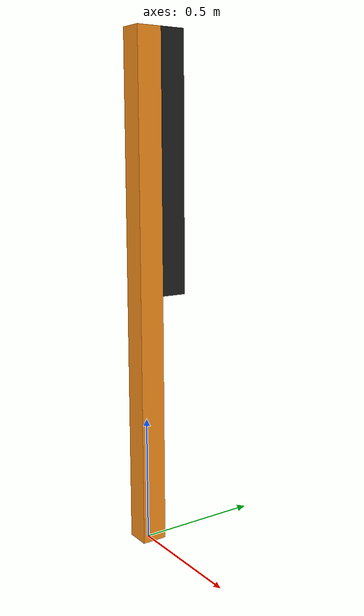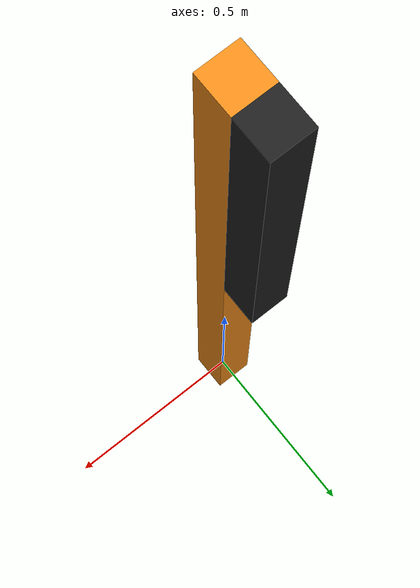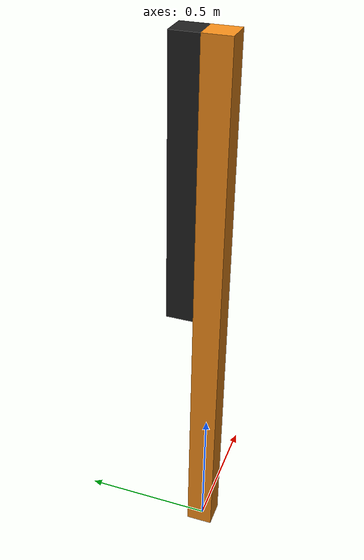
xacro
<?xml version="1.0"?>
<robot name="slider" xmlns:xacro="http://www.ros.org/wiki/xacro">

<!-- define constants -->
<xacro:property name="PI" value="3.1415926" />
<xacro:property name="mass" value="1" /> <!-- kg -->
<xacro:property name="width" value="0.1" />
<xacro:property name="height1" value="2" />
<xacro:property name="height2" value="1" />

<!-- define links -->
<link name="world" />

<!-- Base Link-->
<link name="base_link">
  <collision>
    <geometry>
      <box size="${width} ${width} ${height1}" />
    </geometry>
    <origin xyz="0 0 ${height1/2}" rpy="0 0 0" />
  </collision>

  <visual>
    <geometry>
      <box size="${width} ${width} ${height1}" />
    </geometry>
    <origin xyz="0 0 ${height1/2}" rpy="0 0 0" />
  </visual>

  <inertial>
    <mass value="${mass}" />
    <inertia
	  ixx="${mass / 12.0 * (width*width + height1*height1)}" ixy="0.0" ixz="0.0"
	  iyy="${mass / 12.0 * (height1*height1 + width*width)}" iyz="0.0"
	  izz="${mass / 12.0 * (width*width + width*width)}"/>
  </inertial>
</link>

<gazebo reference="base_link">
  <material>Gazebo/Orange</material>
</gazebo>

<joint name="ground_joint" type="fixed">  <!-- fix to the ground -->
  <parent link="world" />
  <child link="base_link" />
</joint>

<!-- Link 2 -->
<link name="link2">
  <collision>
    <geometry>
      <box size="${width} ${width} ${height2}" />
    </geometry>
    <origin xyz="0 0 ${height2/2}" rpy="0 0 0" />
  </collision>

  <visual>
    <geometry>
      <box size="${width} ${width} ${height2}" />
    </geometry>
    <origin xyz="0 0 ${height2/2}" rpy="0 0 0" />
  </visual>

  <inertial>
    <mass value="${mass/2}" />
    <inertia
	  ixx="${mass / 12.0 * (width*width + height2*height2)}" ixy="0.0" ixz="0.0"
	  iyy="${mass / 12.0 * (height2*height2 + width*width)}" iyz="0.0"
	  izz="${mass / 12.0 * (width*width + width*width)}"/>
  </inertial>
</link>

<gazebo reference="link2">
  <material>Gazebo/Black</material>
</gazebo>

<joint name="fork_joint" type="prismatic">
  <parent link="base_link" />
  <child link="link2" />
  <limit effort="100" velocity="0.2" lower="-1.0" upper="1.0" />
  <origin xyz="0 ${width} ${height1/2}" rpy="0 0 0" />
  <axis xyz="0 0 1" />
</joint>

<transmission name="tran1">
  <type>transmission_interface/SimpleTransmission</type>
  <joint name="fork_joint">
    <hardwareInterface>hardware_interface/VelocityJointInterface</hardwareInterface>
  </joint>
  <actuator name="motor1">
    <hardwareInterface>hardware_interface/VelocityJointInterface</hardwareInterface>
    <mechanicalReduction>1</mechanicalReduction>
  </actuator>
</transmission>

<!-- ros_control plugin -->
 <gazebo>
   <plugin name="gazebo_ros_control" filename="libgazebo_ros_control.so">
     <robotNamespace>/slider</robotNamespace>
     <robotSimType>gazebo_ros_control/DefaultRobotHWSim</robotSimType>
     <legacyModeNS>true</legacyModeNS>  <!-- KC_DBG : to avoid gazebo version warring-->
   </plugin>
 </gazebo>

</robot>
